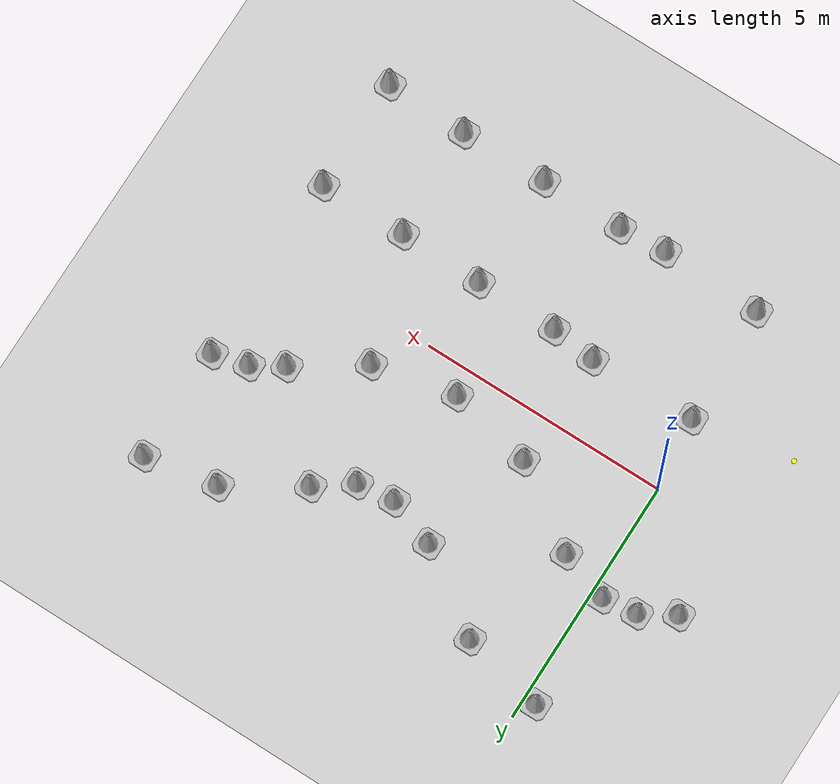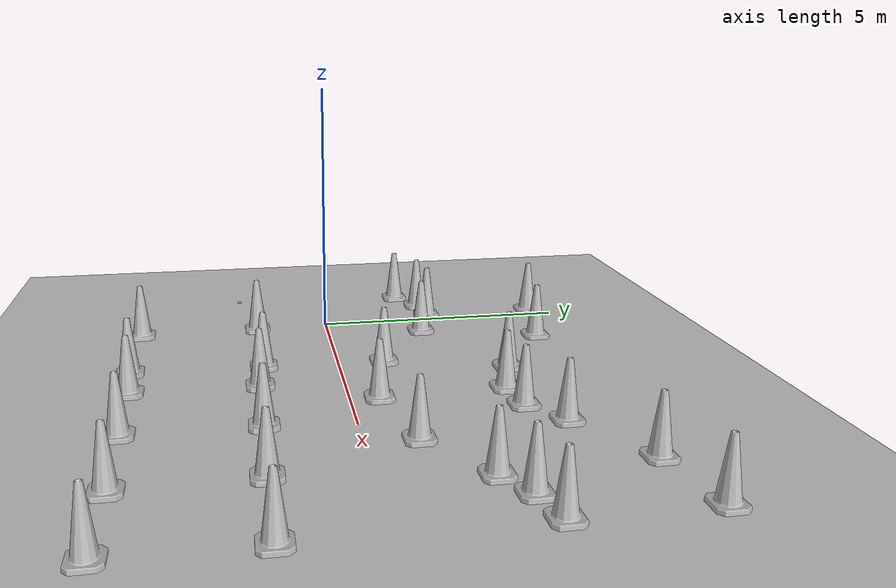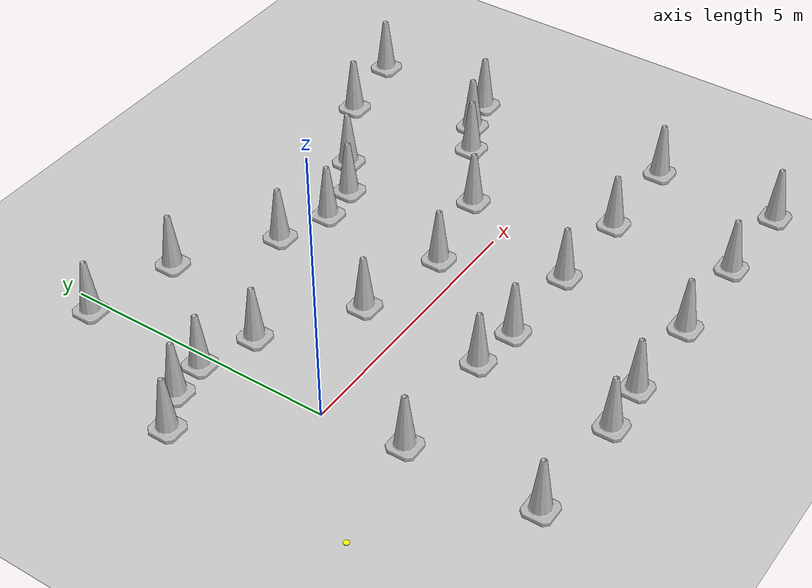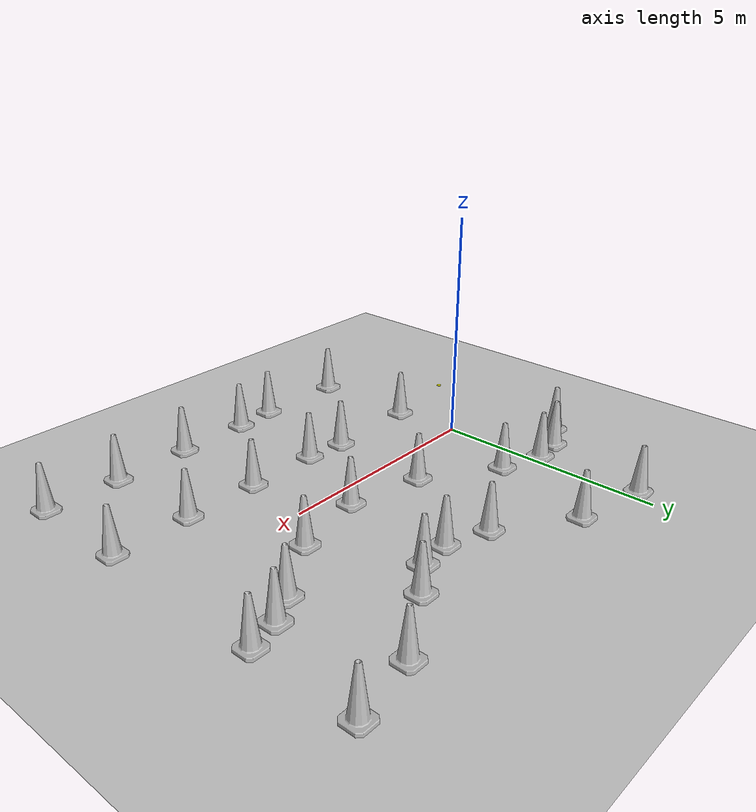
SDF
<sdf version="1.6">
 <world name="default">
  <model name="ground_plane">
   <static>1</static>
   <link name="link">
    <collision name="collision">
     <geometry><plane><normal>0 0 1</normal><size>100 100</size></plane></geometry>
     <surface><friction><ode><mu>100</mu><mu2>50</mu2></ode></friction></surface>
    </collision>
    <visual name="visual">
     <cast_shadows>0</cast_shadows>
     <geometry><plane><normal>0 0 1</normal><size>100 100</size></plane></geometry>
     <material>
      <script><uri>file://media/materials/scripts/gazebo.material</uri><name>Gazebo/Grey</name></script>
     </material>
    </visual>
   </link>
  </model>
  <model name="red_model_1">
   <link name="link">
    <collision name="collision">
     <geometry>
      <mesh><scale>10 10 10</scale><uri>model://construction_cone_red/meshes/construction_cone.dae</uri></mesh>
     </geometry>
    </collision>
    <visual name="visual">
     <geometry>
      <mesh><scale>10 10 10</scale><uri>model://construction_cone_red/meshes/construction_cone.dae</uri></mesh>
     </geometry>
    </visual>
    <inertial>
     <inertia><ixx>1</ixx><ixy>0</ixy><ixz>0</ixz><iyy>1</iyy><iyz>0</iyz><izz>1</izz></inertia>
     <mass>1</mass>
    </inertial>
   </link>
   <pose>8.27865 -1.50008 0.005 0 -0 0.000226</pose>
  </model>
  <model name="red_model_2">
   <link name="link">
    <collision name="collision">
     <geometry>
      <mesh><scale>10 10 10</scale><uri>model://construction_cone_red/meshes/construction_cone.dae</uri></mesh>
     </geometry>
    </collision>
    <visual name="visual">
     <geometry>
      <mesh><scale>10 10 10</scale><uri>model://construction_cone_red/meshes/construction_cone.dae</uri></mesh>
     </geometry>
    </visual>
    <inertial>
     <inertia><ixx>1</ixx><ixy>0</ixy><ixz>0</ixz><iyy>1</iyy><iyz>0</iyz><izz>1</izz></inertia>
     <mass>1</mass>
    </inertial>
   </link>
   <pose>4.86 -1.5 -0 0 -1e-06 0</pose>
  </model>
  <model name="red_model_3">
   <link name="link">
    <collision name="collision">
     <geometry>
      <mesh><scale>10 10 10</scale><uri>model://construction_cone_red/meshes/construction_cone.dae</uri></mesh>
     </geometry>
    </collision>
    <visual name="visual">
     <geometry>
      <mesh><scale>10 10 10</scale><uri>model://construction_cone_red/meshes/construction_cone.dae</uri></mesh>
     </geometry>
    </visual>
    <inertial>
     <inertia><ixx>1</ixx><ixy>0</ixy><ixz>0</ixz><iyy>1</iyy><iyz>0</iyz><izz>1</izz></inertia>
     <mass>1</mass>
    </inertial>
   </link>
   <pose>3.21 -1.5 -1e-05 -0 -0 -0</pose>
  </model>
  <model name="red_model_4">
   <link name="link">
    <collision name="collision">
     <geometry>
      <mesh><scale>10 10 10</scale><uri>model://construction_cone_red/meshes/construction_cone.dae</uri></mesh>
     </geometry>
    </collision>
    <visual name="visual">
     <geometry>
      <mesh><scale>10 10 10</scale><uri>model://construction_cone_red/meshes/construction_cone.dae</uri></mesh>
     </geometry>
    </visual>
    <inertial>
     <inertia><ixx>1</ixx><ixy>0</ixy><ixz>0</ixz><iyy>1</iyy><iyz>0</iyz><izz>1</izz></inertia>
     <mass>1</mass>
    </inertial>
   </link>
   <pose>2.30847 -1.40299 -0 0 -1e-06 -0.002061</pose>
  </model>
  <model name="red_model_5">
   <link name="link">
    <collision name="collision">
     <geometry>
      <mesh><scale>10 10 10</scale><uri>model://construction_cone_red/meshes/construction_cone.dae</uri></mesh>
     </geometry>
    </collision>
    <visual name="visual">
     <geometry>
      <mesh><scale>10 10 10</scale><uri>model://construction_cone_red/meshes/construction_cone.dae</uri></mesh>
     </geometry>
    </visual>
    <inertial>
     <inertia><ixx>1</ixx><ixy>0</ixy><ixz>0</ixz><iyy>1</iyy><iyz>0</iyz><izz>1</izz></inertia>
     <mass>1</mass>
    </inertial>
   </link>
   <pose>0.179842 -1.44788 -0 -0 -1e-06 0.013575</pose>
  </model>
  <model name="red_model_13">
   <link name="link">
    <collision name="collision">
     <geometry>
      <mesh><scale>10 10 10</scale><uri>model://construction_cone_red/meshes/construction_cone.dae</uri></mesh>
     </geometry>
    </collision>
    <visual name="visual">
     <geometry>
      <mesh><scale>10 10 10</scale><uri>model://construction_cone_red/meshes/construction_cone.dae</uri></mesh>
     </geometry>
    </visual>
    <inertial>
     <inertia><ixx>1</ixx><ixy>0</ixy><ixz>0</ixz><iyy>1</iyy><iyz>0</iyz><izz>1</izz></inertia>
     <mass>1</mass>
    </inertial>
   </link>
   <pose>4.05 0.51 -1e-05 -0 -0 -0</pose>
  </model>
  <model name="red_model_16">
   <link name="link">
    <collision name="collision">
     <geometry>
      <mesh><scale>10 10 10</scale><uri>model://construction_cone_red/meshes/construction_cone.dae</uri></mesh>
     </geometry>
    </collision>
    <visual name="visual">
     <geometry>
      <mesh><scale>10 10 10</scale><uri>model://construction_cone_red/meshes/construction_cone.dae</uri></mesh>
     </geometry>
    </visual>
    <inertial>
     <inertia><ixx>1</ixx><ixy>0</ixy><ixz>0</ixz><iyy>1</iyy><iyz>0</iyz><izz>1</izz></inertia>
     <mass>1</mass>
    </inertial>
   </link>
   <pose>5.7 0.87 -0 0 -0 0</pose>
  </model>
  <model name="red_model_17">
   <link name="link">
    <collision name="collision">
     <geometry>
      <mesh><scale>10 10 10</scale><uri>model://construction_cone_red/meshes/construction_cone.dae</uri></mesh>
     </geometry>
    </collision>
    <visual name="visual">
     <geometry>
      <mesh><scale>10 10 10</scale><uri>model://construction_cone_red/meshes/construction_cone.dae</uri></mesh>
     </geometry>
    </visual>
    <inertial>
     <inertia><ixx>1</ixx><ixy>0</ixy><ixz>0</ixz><iyy>1</iyy><iyz>0</iyz><izz>1</izz></inertia>
     <mass>1</mass>
    </inertial>
   </link>
   <pose>2.37 0.87 -0 0 -0 0</pose>
  </model>
  <model name="red_model_21">
   <link name="link">
    <collision name="collision">
     <geometry>
      <mesh><scale>10 10 10</scale><uri>model://construction_cone_red/meshes/construction_cone.dae</uri></mesh>
     </geometry>
    </collision>
    <visual name="visual">
     <geometry>
      <mesh><scale>10 10 10</scale><uri>model://construction_cone_red/meshes/construction_cone.dae</uri></mesh>
     </geometry>
    </visual>
    <inertial>
     <inertia><ixx>1</ixx><ixy>0</ixy><ixz>0</ixz><iyy>1</iyy><iyz>0</iyz><izz>1</izz></inertia>
     <mass>1</mass>
    </inertial>
   </link>
   <pose>-1.56 1.77 -0 0 -0 0</pose>
  </model>
  <model name="red_model_23">
   <link name="link">
    <collision name="collision">
     <geometry>
      <mesh><scale>10 10 10</scale><uri>model://construction_cone_red/meshes/construction_cone.dae</uri></mesh>
     </geometry>
    </collision>
    <visual name="visual">
     <geometry>
      <mesh><scale>10 10 10</scale><uri>model://construction_cone_red/meshes/construction_cone.dae</uri></mesh>
     </geometry>
    </visual>
    <inertial>
     <inertia><ixx>1</ixx><ixy>0</ixy><ixz>0</ixz><iyy>1</iyy><iyz>0</iyz><izz>1</izz></inertia>
     <mass>1</mass>
    </inertial>
   </link>
   <pose>6.99 1.74 0 -0 -0 -0</pose>
  </model>
  <model name="red_model_25">
   <link name="link">
    <collision name="collision">
     <geometry>
      <mesh><scale>10 10 10</scale><uri>model://construction_cone_red/meshes/construction_cone.dae</uri></mesh>
     </geometry>
    </collision>
    <visual name="visual">
     <geometry>
      <mesh><scale>10 10 10</scale><uri>model://construction_cone_red/meshes/construction_cone.dae</uri></mesh>
     </geometry>
    </visual>
    <inertial>
     <inertia><ixx>1</ixx><ixy>0</ixy><ixz>0</ixz><iyy>1</iyy><iyz>0</iyz><izz>1</izz></inertia>
     <mass>1</mass>
    </inertial>
   </link>
   <pose>0.78 1.92 -0 0 -0 0</pose>
  </model>
  <model name="red_model_26">
   <link name="link">
    <collision name="collision">
     <geometry>
      <mesh><scale>10 10 10</scale><uri>model://construction_cone_red/meshes/construction_cone.dae</uri></mesh>
     </geometry>
    </collision>
    <visual name="visual">
     <geometry>
      <mesh><scale>10 10 10</scale><uri>model://construction_cone_red/meshes/construction_cone.dae</uri></mesh>
     </geometry>
    </visual>
    <inertial>
     <inertia><ixx>1</ixx><ixy>0</ixy><ixz>0</ixz><iyy>1</iyy><iyz>0</iyz><izz>1</izz></inertia>
     <mass>1</mass>
    </inertial>
   </link>
   <pose>-0.9 2.16 -0 0 -0 0</pose>
  </model>
  <model name="red_model_27">
   <link name="link">
    <collision name="collision">
     <geometry>
      <mesh><scale>10 10 10</scale><uri>model://construction_cone_red/meshes/construction_cone.dae</uri></mesh>
     </geometry>
    </collision>
    <visual name="visual">
     <geometry>
      <mesh><scale>10 10 10</scale><uri>model://construction_cone_red/meshes/construction_cone.dae</uri></mesh>
     </geometry>
    </visual>
    <inertial>
     <inertia><ixx>1</ixx><ixy>0</ixy><ixz>0</ixz><iyy>1</iyy><iyz>0</iyz><izz>1</izz></inertia>
     <mass>1</mass>
    </inertial>
   </link>
   <pose>7.58615 2.09928 0.002805 0.000936 -0.010521 0.005874</pose>
  </model>
  <model name="red_model_30">
   <link name="link">
    <collision name="collision">
     <geometry>
      <mesh><scale>10 10 10</scale><uri>model://construction_cone_red/meshes/construction_cone.dae</uri></mesh>
     </geometry>
    </collision>
    <visual name="visual">
     <geometry>
      <mesh><scale>10 10 10</scale><uri>model://construction_cone_red/meshes/construction_cone.dae</uri></mesh>
     </geometry>
    </visual>
    <inertial>
     <inertia><ixx>1</ixx><ixy>0</ixy><ixz>0</ixz><iyy>1</iyy><iyz>0</iyz><izz>1</izz></inertia>
     <mass>1</mass>
    </inertial>
   </link>
   <pose>8.28 2.28001 0.005 -1e-06 -0 3e-06</pose>
  </model>
  <model name="red_model_31">
   <link name="link">
    <collision name="collision">
     <geometry>
      <mesh><scale>10 10 10</scale><uri>model://construction_cone_red/meshes/construction_cone.dae</uri></mesh>
     </geometry>
    </collision>
    <visual name="visual">
     <geometry>
      <mesh><scale>10 10 10</scale><uri>model://construction_cone_red/meshes/construction_cone.dae</uri></mesh>
     </geometry>
    </visual>
    <inertial>
     <inertia><ixx>1</ixx><ixy>0</ixy><ixz>0</ixz><iyy>1</iyy><iyz>0</iyz><izz>1</izz></inertia>
     <mass>1</mass>
    </inertial>
   </link>
   <pose>-0.21 2.25 -0 0 -1e-06 0</pose>
  </model>
  <model name="blue_model_0">
   <link name="link">
    <collision name="collision">
     <geometry>
      <mesh><scale>10 10 10</scale><uri>model://construction_cone_blue/meshes/construction_cone.dae</uri></mesh>
     </geometry>
    </collision>
    <visual name="visual">
     <geometry>
      <mesh><scale>10 10 10</scale><uri>model://construction_cone_blue/meshes/construction_cone.dae</uri></mesh>
     </geometry>
    </visual>
    <inertial>
     <inertia><ixx>1</ixx><ixy>0</ixy><ixz>0</ixz><iyy>1</iyy><iyz>0</iyz><izz>1</izz></inertia>
     <mass>1</mass>
    </inertial>
   </link>
   <pose>2.26467 -3.84976 -8e-06 1e-06 -0 0.01861</pose>
  </model>
  <model name="blue_model_1">
   <link name="link">
    <collision name="collision">
     <geometry>
      <mesh><scale>10 10 10</scale><uri>model://construction_cone_blue/meshes/construction_cone.dae</uri></mesh>
     </geometry>
    </collision>
    <visual name="visual">
     <geometry>
      <mesh><scale>10 10 10</scale><uri>model://construction_cone_blue/meshes/construction_cone.dae</uri></mesh>
     </geometry>
    </visual>
    <inertial>
     <inertia><ixx>1</ixx><ixy>0</ixy><ixz>0</ixz><iyy>1</iyy><iyz>0</iyz><izz>1</izz></inertia>
     <mass>1</mass>
    </inertial>
   </link>
   <pose>0.245736 -3.79958 -0 0 -1e-06 0.018627</pose>
  </model>
  <model name="blue_model_3">
   <link name="link">
    <collision name="collision">
     <geometry>
      <mesh><scale>10 10 10</scale><uri>model://construction_cone_blue/meshes/construction_cone.dae</uri></mesh>
     </geometry>
    </collision>
    <visual name="visual">
     <geometry>
      <mesh><scale>10 10 10</scale><uri>model://construction_cone_blue/meshes/construction_cone.dae</uri></mesh>
     </geometry>
    </visual>
    <inertial>
     <inertia><ixx>1</ixx><ixy>0</ixy><ixz>0</ixz><iyy>1</iyy><iyz>0</iyz><izz>1</izz></inertia>
     <mass>1</mass>
    </inertial>
   </link>
   <pose>8.28 -3.78 0.004998 0 -0 0</pose>
  </model>
  <model name="blue_model_4">
   <link name="link">
    <collision name="collision">
     <geometry>
      <mesh><scale>10 10 10</scale><uri>model://construction_cone_blue/meshes/construction_cone.dae</uri></mesh>
     </geometry>
    </collision>
    <visual name="visual">
     <geometry>
      <mesh><scale>10 10 10</scale><uri>model://construction_cone_blue/meshes/construction_cone.dae</uri></mesh>
     </geometry>
    </visual>
    <inertial>
     <inertia><ixx>1</ixx><ixy>0</ixy><ixz>0</ixz><iyy>1</iyy><iyz>0</iyz><izz>1</izz></inertia>
     <mass>1</mass>
    </inertial>
   </link>
   <pose>3.21 -3.78 -1e-05 0 -0 0</pose>
  </model>
  <model name="blue_model_16">
   <link name="link">
    <collision name="collision">
     <geometry>
      <mesh><scale>10 10 10</scale><uri>model://construction_cone_blue/meshes/construction_cone.dae</uri></mesh>
     </geometry>
    </collision>
    <visual name="visual">
     <geometry>
      <mesh><scale>10 10 10</scale><uri>model://construction_cone_blue/meshes/construction_cone.dae</uri></mesh>
     </geometry>
    </visual>
    <inertial>
     <inertia><ixx>1</ixx><ixy>0</ixy><ixz>0</ixz><iyy>1</iyy><iyz>0</iyz><izz>1</izz></inertia>
     <mass>1</mass>
    </inertial>
   </link>
   <pose>3.96 2.79 -0 0 -1e-06 0</pose>
  </model>
  <model name="blue_model_18">
   <link name="link">
    <collision name="collision">
     <geometry>
      <mesh><scale>10 10 10</scale><uri>model://construction_cone_blue/meshes/construction_cone.dae</uri></mesh>
     </geometry>
    </collision>
    <visual name="visual">
     <geometry>
      <mesh><scale>10 10 10</scale><uri>model://construction_cone_blue/meshes/construction_cone.dae</uri></mesh>
     </geometry>
    </visual>
    <inertial>
     <inertia><ixx>1</ixx><ixy>0</ixy><ixz>0</ixz><iyy>1</iyy><iyz>0</iyz><izz>1</izz></inertia>
     <mass>1</mass>
    </inertial>
   </link>
   <pose>4.71 2.88 -8e-06 1e-06 -0 0</pose>
  </model>
  <model name="blue_model_20">
   <link name="link">
    <collision name="collision">
     <geometry>
      <mesh><scale>10 10 10</scale><uri>model://construction_cone_blue/meshes/construction_cone.dae</uri></mesh>
     </geometry>
    </collision>
    <visual name="visual">
     <geometry>
      <mesh><scale>10 10 10</scale><uri>model://construction_cone_blue/meshes/construction_cone.dae</uri></mesh>
     </geometry>
    </visual>
    <inertial>
     <inertia><ixx>1</ixx><ixy>0</ixy><ixz>0</ixz><iyy>1</iyy><iyz>0</iyz><izz>1</izz></inertia>
     <mass>1</mass>
    </inertial>
   </link>
   <pose>3 3.12 -1e-05 0 -0 0</pose>
  </model>
  <model name="blue_model_23">
   <link name="link">
    <collision name="collision">
     <geometry>
      <mesh><scale>10 10 10</scale><uri>model://construction_cone_blue/meshes/construction_cone.dae</uri></mesh>
     </geometry>
    </collision>
    <visual name="visual">
     <geometry>
      <mesh><scale>10 10 10</scale><uri>model://construction_cone_blue/meshes/construction_cone.dae</uri></mesh>
     </geometry>
    </visual>
    <inertial>
     <inertia><ixx>1</ixx><ixy>0</ixy><ixz>0</ixz><iyy>1</iyy><iyz>0</iyz><izz>1</izz></inertia>
     <mass>1</mass>
    </inertial>
   </link>
   <pose>5.4 3.39 -0 0 -0 0</pose>
  </model>
  <model name="blue_model_25">
   <link name="link">
    <collision name="collision">
     <geometry>
      <mesh><scale>10 10 10</scale><uri>model://construction_cone_blue/meshes/construction_cone.dae</uri></mesh>
     </geometry>
    </collision>
    <visual name="visual">
     <geometry>
      <mesh><scale>10 10 10</scale><uri>model://construction_cone_blue/meshes/construction_cone.dae</uri></mesh>
     </geometry>
    </visual>
    <inertial>
     <inertia><ixx>1</ixx><ixy>0</ixy><ixz>0</ixz><iyy>1</iyy><iyz>0</iyz><izz>1</izz></inertia>
     <mass>1</mass>
    </inertial>
   </link>
   <pose>1.41 4.2 -1e-05 -0 -0 -0</pose>
  </model>
  <model name="blue_model_27">
   <link name="link">
    <collision name="collision">
     <geometry>
      <mesh><scale>10 10 10</scale><uri>model://construction_cone_blue/meshes/construction_cone.dae</uri></mesh>
     </geometry>
    </collision>
    <visual name="visual">
     <geometry>
      <mesh><scale>10 10 10</scale><uri>model://construction_cone_blue/meshes/construction_cone.dae</uri></mesh>
     </geometry>
    </visual>
    <inertial>
     <inertia><ixx>1</ixx><ixy>0</ixy><ixz>0</ixz><iyy>1</iyy><iyz>0</iyz><izz>1</izz></inertia>
     <mass>1</mass>
    </inertial>
   </link>
   <pose>6.84 4.29 -0 0 -1e-06 0</pose>
  </model>
  <model name="blue_model_30">
   <link name="link">
    <collision name="collision">
     <geometry>
      <mesh><scale>10 10 10</scale><uri>model://construction_cone_blue/meshes/construction_cone.dae</uri></mesh>
     </geometry>
    </collision>
    <visual name="visual">
     <geometry>
      <mesh><scale>10 10 10</scale><uri>model://construction_cone_blue/meshes/construction_cone.dae</uri></mesh>
     </geometry>
    </visual>
    <inertial>
     <inertia><ixx>1</ixx><ixy>0</ixy><ixz>0</ixz><iyy>1</iyy><iyz>0</iyz><izz>1</izz></inertia>
     <mass>1</mass>
    </inertial>
   </link>
   <pose>8.28 4.56 0.005 -0 -0 -0</pose>
  </model>
  <model name="blue_model_31">
   <link name="link">
    <collision name="collision">
     <geometry>
      <mesh><scale>10 10 10</scale><uri>model://construction_cone_blue/meshes/construction_cone.dae</uri></mesh>
     </geometry>
    </collision>
    <visual name="visual">
     <geometry>
      <mesh><scale>10 10 10</scale><uri>model://construction_cone_blue/meshes/construction_cone.dae</uri></mesh>
     </geometry>
    </visual>
    <inertial>
     <inertia><ixx>1</ixx><ixy>0</ixy><ixz>0</ixz><iyy>1</iyy><iyz>0</iyz><izz>1</izz></inertia>
     <mass>1</mass>
    </inertial>
   </link>
   <pose>-0.24 4.56 -0 0 -1e-06 0</pose>
  </model>
  <model name="yellow_model_0">
   <static>1</static>
   <link name="link">
    <visual name="visual">
     <geometry><cylinder><radius>0.05</radius><length>0.01</length></cylinder></geometry>
     <material><ambient>1 1 0 1</ambient><diffuse>1 1 0 1</diffuse><specular>0.5 0.5 0.5 1</specular></material>
    </visual>
    <collision name="collision">
     <geometry><cylinder><radius>0.5</radius><length>0.01</length></cylinder></geometry>
    </collision>
   </link>
   <pose>8.28 4.56 0 0 -0 0</pose>
  </model>
  <model name="yellow_model_60">
   <static>1</static>
   <link name="link">
    <visual name="visual">
     <geometry><cylinder><radius>0.05</radius><length>0.01</length></cylinder></geometry>
     <material><ambient>1 1 0 1</ambient><diffuse>1 1 0 1</diffuse><specular>0.5 0.5 0.5 1</specular></material>
    </visual>
    <collision name="collision">
     <geometry><cylinder><radius>0.5</radius><length>0.01</length></cylinder></geometry>
    </collision>
   </link>
   <pose>8.28 -3.78 0 0 -0 0</pose>
  </model>
  <model name="Construction Cone blue">
   <link name="link">
    <collision name="collision">
     <geometry>
      <mesh><scale>10 10 10</scale><uri>model://construction_cone_blue/meshes/construction_cone.dae</uri></mesh>
     </geometry>
    </collision>
    <visual name="visual">
     <geometry>
      <mesh><scale>10 10 10</scale><uri>model://construction_cone_blue/meshes/construction_cone.dae</uri></mesh>
     </geometry>
    </visual>
    <inertial>
     <inertia><ixx>1</ixx><ixy>0</ixy><ixz>0</ixz><iyy>1</iyy><iyz>0</iyz><izz>1</izz></inertia>
     <mass>1</mass>
    </inertial>
   </link>
   <pose>4.87189 -3.77415 -0 0 -1e-06 0</pose>
  </model>
  <model name="Construction Cone red">
   <link name="link">
    <collision name="collision">
     <geometry>
      <mesh><scale>10 10 10</scale><uri>model://construction_cone_red/meshes/construction_cone.dae</uri></mesh>
     </geometry>
    </collision>
    <visual name="visual">
     <geometry>
      <mesh><scale>10 10 10</scale><uri>model://construction_cone_red/meshes/construction_cone.dae</uri></mesh>
     </geometry>
    </visual>
    <inertial>
     <inertia><ixx>1</ixx><ixy>0</ixy><ixz>0</ixz><iyy>1</iyy><iyz>0</iyz><izz>1</izz></inertia>
     <mass>1</mass>
    </inertial>
   </link>
   <pose>6.53416 -1.51813 0 -0 -0 -0</pose>
  </model>
  <model name="Construction Cone blue_0">
   <link name="link">
    <collision name="collision">
     <geometry>
      <mesh><scale>10 10 10</scale><uri>model://construction_cone_blue/meshes/construction_cone.dae</uri></mesh>
     </geometry>
    </collision>
    <visual name="visual">
     <geometry>
      <mesh><scale>10 10 10</scale><uri>model://construction_cone_blue/meshes/construction_cone.dae</uri></mesh>
     </geometry>
    </visual>
    <inertial>
     <inertia><ixx>1</ixx><ixy>0</ixy><ixz>0</ixz><iyy>1</iyy><iyz>0</iyz><izz>1</izz></inertia>
     <mass>1</mass>
    </inertial>
   </link>
   <pose>6.62341 -3.74704 -0 0 -1e-06 0</pose>
  </model>
  <model name="yellow_disc_clone_35">
   <static>1</static>
   <link name="link">
    <visual name="visual">
     <geometry><cylinder><radius>0.05</radius><length>0.01</length></cylinder></geometry>
     <material><ambient>1 1 0 1</ambient><diffuse>1 1 0 1</diffuse><specular>0.5 0.5 0.5 1</specular></material>
    </visual>
    <collision name="collision">
     <geometry><cylinder><radius>0.5</radius><length>0.01</length></cylinder></geometry>
    </collision>
   </link>
   <pose>-1.81681 -1.79799 0 0 -0 0</pose>
  </model>
 </world>
</sdf>
